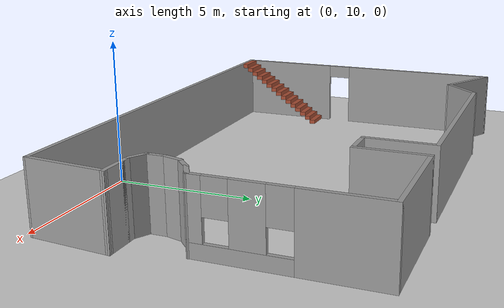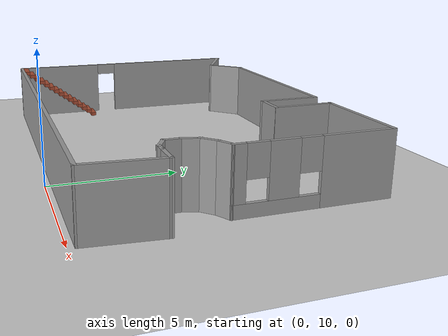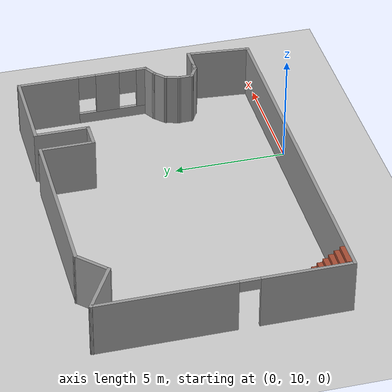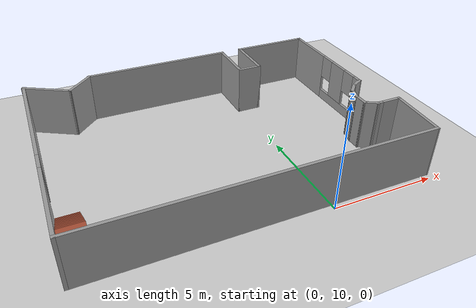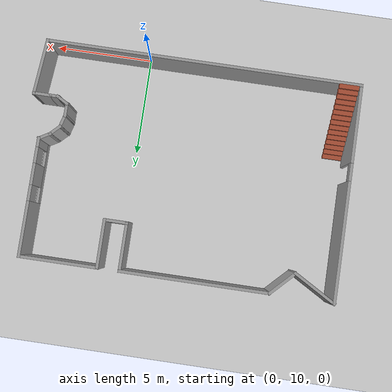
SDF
<sdf version="1.6">
 <world name="default">
  <model name="ground_plane">
   <static>1</static>
   <link name="link">
    <collision name="collision">
     <geometry><plane><normal>0 0 1</normal><size>100 100</size></plane></geometry>
     <surface><friction><ode><mu>100</mu><mu2>50</mu2></ode></friction></surface>
    </collision>
    <visual name="visual">
     <cast_shadows>0</cast_shadows>
     <geometry><plane><normal>0 0 1</normal><size>100 100</size></plane></geometry>
     <material>
      <script><uri>file://media/materials/scripts/gazebo.material</uri><name>Gazebo/Grey</name></script>
     </material>
    </visual>
   </link>
  </model>
  <model name="industria_basica">
   <pose>-2.75029 15.7364 0 0 -0 0</pose>
   <link name="Stairs_0">
    <visual name="Stairs_0_Visual_0">
     <pose>-7.4348 -1.99326 0.083333 0 -0 0</pose>
     <geometry><box><size>1 0.233333 0.166667</size></box></geometry>
     <material>
      <script><uri>file://media/materials/scripts/gazebo.material</uri><name>Gazebo/Bricks</name></script>
      <ambient>1 1 1 1</ambient>
     </material>
    </visual>
    <collision name="Stairs_0_Collision_0">
     <geometry><box><size>1 0.233333 0.166667</size></box></geometry>
     <pose>-7.4348 -1.99326 0.083333 0 -0 0</pose>
    </collision>
    <visual name="Stairs_0_Visual_1">
     <pose>-7.4348 -2.22659 0.25 0 -0 0</pose>
     <geometry><box><size>1 0.233333 0.166667</size></box></geometry>
     <material>
      <script><uri>file://media/materials/scripts/gazebo.material</uri><name>Gazebo/Bricks</name></script>
      <ambient>1 1 1 1</ambient>
     </material>
    </visual>
    <collision name="Stairs_0_Collision_1">
     <geometry><box><size>1 0.233333 0.166667</size></box></geometry>
     <pose>-7.4348 -2.22659 0.25 0 -0 0</pose>
    </collision>
    <visual name="Stairs_0_Visual_2">
     <pose>-7.4348 -2.45992 0.416667 0 -0 0</pose>
     <geometry><box><size>1 0.233333 0.166667</size></box></geometry>
     <material>
      <script><uri>file://media/materials/scripts/gazebo.material</uri><name>Gazebo/Bricks</name></script>
      <ambient>1 1 1 1</ambient>
     </material>
    </visual>
    <collision name="Stairs_0_Collision_2">
     <geometry><box><size>1 0.233333 0.166667</size></box></geometry>
     <pose>-7.4348 -2.45992 0.416667 0 -0 0</pose>
    </collision>
    <visual name="Stairs_0_Visual_3">
     <pose>-7.4348 -2.69326 0.583333 0 -0 0</pose>
     <geometry><box><size>1 0.233333 0.166667</size></box></geometry>
     <material>
      <script><uri>file://media/materials/scripts/gazebo.material</uri><name>Gazebo/Bricks</name></script>
      <ambient>1 1 1 1</ambient>
     </material>
    </visual>
    <collision name="Stairs_0_Collision_3">
     <geometry><box><size>1 0.233333 0.166667</size></box></geometry>
     <pose>-7.4348 -2.69326 0.583333 0 -0 0</pose>
    </collision>
    <visual name="Stairs_0_Visual_4">
     <pose>-7.4348 -2.92659 0.75 0 -0 0</pose>
     <geometry><box><size>1 0.233333 0.166667</size></box></geometry>
     <material>
      <script><uri>file://media/materials/scripts/gazebo.material</uri><name>Gazebo/Bricks</name></script>
      <ambient>1 1 1 1</ambient>
     </material>
    </visual>
    <collision name="Stairs_0_Collision_4">
     <geometry><box><size>1 0.233333 0.166667</size></box></geometry>
     <pose>-7.4348 -2.92659 0.75 0 -0 0</pose>
    </collision>
    <visual name="Stairs_0_Visual_5">
     <pose>-7.4348 -3.15992 0.916667 0 -0 0</pose>
     <geometry><box><size>1 0.233333 0.166667</size></box></geometry>
     <material>
      <script><uri>file://media/materials/scripts/gazebo.material</uri><name>Gazebo/Bricks</name></script>
      <ambient>1 1 1 1</ambient>
     </material>
    </visual>
    <collision name="Stairs_0_Collision_5">
     <geometry><box><size>1 0.233333 0.166667</size></box></geometry>
     <pose>-7.4348 -3.15992 0.916667 0 -0 0</pose>
    </collision>
    <visual name="Stairs_0_Visual_6">
     <pose>-7.4348 -3.39326 1.08333 0 -0 0</pose>
     <geometry><box><size>1 0.233333 0.166667</size></box></geometry>
     <material>
      <script><uri>file://media/materials/scripts/gazebo.material</uri><name>Gazebo/Bricks</name></script>
      <ambient>1 1 1 1</ambient>
     </material>
    </visual>
    <collision name="Stairs_0_Collision_6">
     <geometry><box><size>1 0.233333 0.166667</size></box></geometry>
     <pose>-7.4348 -3.39326 1.08333 0 -0 0</pose>
    </collision>
    <visual name="Stairs_0_Visual_7">
     <pose>-7.4348 -3.62659 1.25 0 -0 0</pose>
     <geometry><box><size>1 0.233333 0.166667</size></box></geometry>
     <material>
      <script><uri>file://media/materials/scripts/gazebo.material</uri><name>Gazebo/Bricks</name></script>
      <ambient>1 1 1 1</ambient>
     </material>
    </visual>
    <collision name="Stairs_0_Collision_7">
     <geometry><box><size>1 0.233333 0.166667</size></box></geometry>
     <pose>-7.4348 -3.62659 1.25 0 -0 0</pose>
    </collision>
    <visual name="Stairs_0_Visual_8">
     <pose>-7.4348 -3.85992 1.41667 0 -0 0</pose>
     <geometry><box><size>1 0.233333 0.166667</size></box></geometry>
     <material>
      <script><uri>file://media/materials/scripts/gazebo.material</uri><name>Gazebo/Bricks</name></script>
      <ambient>1 1 1 1</ambient>
     </material>
    </visual>
    <collision name="Stairs_0_Collision_8">
     <geometry><box><size>1 0.233333 0.166667</size></box></geometry>
     <pose>-7.4348 -3.85992 1.41667 0 -0 0</pose>
    </collision>
    <visual name="Stairs_0_Visual_9">
     <pose>-7.4348 -4.09326 1.58333 0 -0 0</pose>
     <geometry><box><size>1 0.233333 0.166667</size></box></geometry>
     <material>
      <script><uri>file://media/materials/scripts/gazebo.material</uri><name>Gazebo/Bricks</name></script>
      <ambient>1 1 1 1</ambient>
     </material>
    </visual>
    <collision name="Stairs_0_Collision_9">
     <geometry><box><size>1 0.233333 0.166667</size></box></geometry>
     <pose>-7.4348 -4.09326 1.58333 0 -0 0</pose>
    </collision>
    <visual name="Stairs_0_Visual_10">
     <pose>-7.4348 -4.32659 1.75 0 -0 0</pose>
     <geometry><box><size>1 0.233333 0.166667</size></box></geometry>
     <material>
      <script><uri>file://media/materials/scripts/gazebo.material</uri><name>Gazebo/Bricks</name></script>
      <ambient>1 1 1 1</ambient>
     </material>
    </visual>
    <collision name="Stairs_0_Collision_10">
     <geometry><box><size>1 0.233333 0.166667</size></box></geometry>
     <pose>-7.4348 -4.32659 1.75 0 -0 0</pose>
    </collision>
    <visual name="Stairs_0_Visual_11">
     <pose>-7.4348 -4.55992 1.91667 0 -0 0</pose>
     <geometry><box><size>1 0.233333 0.166667</size></box></geometry>
     <material>
      <script><uri>file://media/materials/scripts/gazebo.material</uri><name>Gazebo/Bricks</name></script>
      <ambient>1 1 1 1</ambient>
     </material>
    </visual>
    <collision name="Stairs_0_Collision_11">
     <geometry><box><size>1 0.233333 0.166667</size></box></geometry>
     <pose>-7.4348 -4.55992 1.91667 0 -0 0</pose>
    </collision>
    <visual name="Stairs_0_Visual_12">
     <pose>-7.4348 -4.79326 2.08333 0 -0 0</pose>
     <geometry><box><size>1 0.233333 0.166667</size></box></geometry>
     <material>
      <script><uri>file://media/materials/scripts/gazebo.material</uri><name>Gazebo/Bricks</name></script>
      <ambient>1 1 1 1</ambient>
     </material>
    </visual>
    <collision name="Stairs_0_Collision_12">
     <geometry><box><size>1 0.233333 0.166667</size></box></geometry>
     <pose>-7.4348 -4.79326 2.08333 0 -0 0</pose>
    </collision>
    <visual name="Stairs_0_Visual_13">
     <pose>-7.4348 -5.02659 2.25 0 -0 0</pose>
     <geometry><box><size>1 0.233333 0.166667</size></box></geometry>
     <material>
      <script><uri>file://media/materials/scripts/gazebo.material</uri><name>Gazebo/Bricks</name></script>
      <ambient>1 1 1 1</ambient>
     </material>
    </visual>
    <collision name="Stairs_0_Collision_13">
     <geometry><box><size>1 0.233333 0.166667</size></box></geometry>
     <pose>-7.4348 -5.02659 2.25 0 -0 0</pose>
    </collision>
    <visual name="Stairs_0_Visual_14">
     <pose>-7.4348 -5.25992 2.41667 0 -0 0</pose>
     <geometry><box><size>1 0.233333 0.166667</size></box></geometry>
     <material>
      <script><uri>file://media/materials/scripts/gazebo.material</uri><name>Gazebo/Bricks</name></script>
      <ambient>1 1 1 1</ambient>
     </material>
    </visual>
    <collision name="Stairs_0_Collision_14">
     <geometry><box><size>1 0.233333 0.166667</size></box></geometry>
     <pose>-7.4348 -5.25992 2.41667 0 -0 0</pose>
    </collision>
   </link>
   <link name="Wall_10">
    <collision name="Wall_10_Collision">
     <geometry><box><size>7.5 0.15 2.5</size></box></geometry>
     <pose>0 0 1.25 0 -0 0</pose>
    </collision>
    <visual name="Wall_10_Visual">
     <pose>0 0 1.25 0 -0 0</pose>
     <geometry><box><size>7.5 0.15 2.5</size></box></geometry>
     <material>
      <script><uri>file://media/materials/scripts/gazebo.material</uri><name>Gazebo/Grey</name></script>
      <ambient>1 1 1 1</ambient>
     </material>
    </visual>
    <pose>-1.19131 5.37072 0 0 -0 0</pose>
   </link>
   <link name="Wall_11">
    <collision name="Wall_11_Collision">
     <geometry><box><size>2.5 0.15 2.5</size></box></geometry>
     <pose>0 0 1.25 0 -0 0</pose>
    </collision>
    <visual name="Wall_11_Visual">
     <pose>0 0 1.25 0 -0 0</pose>
     <geometry><box><size>2.5 0.15 2.5</size></box></geometry>
     <material>
      <script><uri>file://media/materials/scripts/gazebo.material</uri><name>Gazebo/Grey</name></script>
      <ambient>1 1 1 1</ambient>
     </material>
    </visual>
    <pose>2.48369 4.19572 0 0 0 -1.5708</pose>
   </link>
   <link name="Wall_12">
    <collision name="Wall_12_Collision">
     <geometry><box><size>1.25 0.15 2.5</size></box></geometry>
     <pose>0 0 1.25 0 -0 0</pose>
    </collision>
    <visual name="Wall_12_Visual">
     <pose>0 0 1.25 0 -0 0</pose>
     <geometry><box><size>1.25 0.15 2.5</size></box></geometry>
     <material>
      <script><uri>file://media/materials/scripts/gazebo.material</uri><name>Gazebo/Grey</name></script>
      <ambient>1 1 1 1</ambient>
     </material>
    </visual>
    <pose>3.03369 3.02072 0 0 -0 0</pose>
   </link>
   <link name="Wall_13">
    <collision name="Wall_13_Collision">
     <geometry><box><size>2.5 0.15 2.5</size></box></geometry>
     <pose>0 0 1.25 0 -0 0</pose>
    </collision>
    <visual name="Wall_13_Visual">
     <pose>0 0 1.25 0 -0 0</pose>
     <geometry><box><size>2.5 0.15 2.5</size></box></geometry>
     <material>
      <script><uri>file://media/materials/scripts/gazebo.material</uri><name>Gazebo/Grey</name></script>
      <ambient>1 1 1 1</ambient>
     </material>
    </visual>
    <pose>3.58369 4.19572 0 0 -0 1.5708</pose>
   </link>
   <link name="Wall_14">
    <collision name="Wall_14_Collision">
     <geometry><box><size>4 0.15 2.5</size></box></geometry>
     <pose>0 0 1.25 0 -0 0</pose>
    </collision>
    <visual name="Wall_14_Visual">
     <pose>0 0 1.25 0 -0 0</pose>
     <geometry><box><size>4 0.15 2.5</size></box></geometry>
     <material>
      <script><uri>file://media/materials/scripts/gazebo.material</uri><name>Gazebo/Grey</name></script>
      <ambient>1 1 1 1</ambient>
     </material>
    </visual>
    <pose>5.50869 5.37072 0 0 -0 0</pose>
   </link>
   <link name="Wall_15">
    <pose>7.43369 2.44572 0 0 0 -1.5708</pose>
    <visual name="Wall_15_Visual_0">
     <pose>-1.60274 0 1.25 0 -0 0</pose>
     <geometry><box><size>2.79452 0.15 2.5</size></box></geometry>
     <material>
      <script><uri>file://media/materials/scripts/gazebo.material</uri><name>Gazebo/Grey</name></script>
      <ambient>1 1 1 1</ambient>
     </material>
    </visual>
    <collision name="Wall_15_Collision_0">
     <geometry><box><size>2.79452 0.15 2.5</size></box></geometry>
     <pose>-1.60274 0 1.25 0 -0 0</pose>
    </collision>
    <visual name="Wall_15_Visual_1">
     <pose>1.39726 0 0.25 0 -0 0</pose>
     <geometry><box><size>3.20548 0.15 0.5</size></box></geometry>
     <material>
      <script><uri>file://media/materials/scripts/gazebo.material</uri><name>Gazebo/Grey</name></script>
      <ambient>1 1 1 1</ambient>
     </material>
    </visual>
    <collision name="Wall_15_Collision_1">
     <geometry><box><size>3.20548 0.15 0.5</size></box></geometry>
     <pose>1.39726 0 0.25 0 -0 0</pose>
    </collision>
    <visual name="Wall_15_Visual_2">
     <pose>1.13916 0 1.5 0 -0 0</pose>
     <geometry><box><size>1.08927 0.15 2</size></box></geometry>
     <material>
      <script><uri>file://media/materials/scripts/gazebo.material</uri><name>Gazebo/Grey</name></script>
      <ambient>1 1 1 1</ambient>
     </material>
    </visual>
    <collision name="Wall_15_Collision_2">
     <geometry><box><size>1.08927 0.15 2</size></box></geometry>
     <pose>1.13916 0 1.5 0 -0 0</pose>
    </collision>
    <visual name="Wall_15_Visual_3">
     <pose>2.7419 0 1.5 0 -0 0</pose>
     <geometry><box><size>0.516207 0.15 2</size></box></geometry>
     <material>
      <script><uri>file://media/materials/scripts/gazebo.material</uri><name>Gazebo/Grey</name></script>
      <ambient>1 1 1 1</ambient>
     </material>
    </visual>
    <collision name="Wall_15_Collision_3">
     <geometry><box><size>0.516207 0.15 2</size></box></geometry>
     <pose>2.7419 0 1.5 0 -0 0</pose>
    </collision>
    <visual name="Wall_15_Visual_4">
     <pose>0.194521 0 1.9 0 -0 0</pose>
     <geometry><box><size>0.8 0.15 1.2</size></box></geometry>
     <material>
      <script><uri>file://media/materials/scripts/gazebo.material</uri><name>Gazebo/Grey</name></script>
      <ambient>1 1 1 1</ambient>
     </material>
    </visual>
    <collision name="Wall_15_Collision_4">
     <geometry><box><size>0.8 0.15 1.2</size></box></geometry>
     <pose>0.194521 0 1.9 0 -0 0</pose>
    </collision>
    <visual name="Wall_15_Visual_5">
     <pose>2.08379 0 1.9 0 -0 0</pose>
     <geometry><box><size>0.8 0.15 1.2</size></box></geometry>
     <material>
      <script><uri>file://media/materials/scripts/gazebo.material</uri><name>Gazebo/Grey</name></script>
      <ambient>1 1 1 1</ambient>
     </material>
    </visual>
    <collision name="Wall_15_Collision_5">
     <geometry><box><size>0.8 0.15 1.2</size></box></geometry>
     <pose>2.08379 0 1.9 0 -0 0</pose>
    </collision>
   </link>
   <link name="Wall_16">
    <collision name="Wall_16_Collision">
     <geometry><box><size>0.75 0.15 2.5</size></box></geometry>
     <pose>0 0 1.25 0 -0 0</pose>
    </collision>
    <visual name="Wall_16_Visual">
     <pose>0 0 1.25 0 -0 0</pose>
     <geometry><box><size>0.75 0.15 2.5</size></box></geometry>
     <material>
      <script><uri>file://media/materials/scripts/gazebo.material</uri><name>Gazebo/Grey</name></script>
      <ambient>1 1 1 1</ambient>
     </material>
    </visual>
    <pose>7.17388 -0.629277 0 0 0 -2.61799</pose>
   </link>
   <link name="Wall_17">
    <collision name="Wall_17_Collision">
     <geometry><box><size>0.75 0.15 2.5</size></box></geometry>
     <pose>0 0 1.25 0 -0 0</pose>
    </collision>
    <visual name="Wall_17_Visual">
     <pose>0 0 1.25 0 -0 0</pose>
     <geometry><box><size>0.75 0.15 2.5</size></box></geometry>
     <material>
      <script><uri>file://media/materials/scripts/gazebo.material</uri><name>Gazebo/Grey</name></script>
      <ambient>1 1 1 1</ambient>
     </material>
    </visual>
    <pose>6.70194 -0.991409 0 0 0 -2.35619</pose>
   </link>
   <link name="Wall_18">
    <collision name="Wall_18_Collision">
     <geometry><box><size>0.75 0.15 2.5</size></box></geometry>
     <pose>0 0 1.25 0 -0 0</pose>
    </collision>
    <visual name="Wall_18_Visual">
     <pose>0 0 1.25 0 -0 0</pose>
     <geometry><box><size>0.75 0.15 2.5</size></box></geometry>
     <material>
      <script><uri>file://media/materials/scripts/gazebo.material</uri><name>Gazebo/Grey</name></script>
      <ambient>1 1 1 1</ambient>
     </material>
    </visual>
    <pose>6.41217 -1.49332 0 0 0 -1.8326</pose>
   </link>
   <link name="Wall_19">
    <collision name="Wall_19_Collision">
     <geometry><box><size>0.75 0.15 2.5</size></box></geometry>
     <pose>0 0 1.25 0 -0 0</pose>
    </collision>
    <visual name="Wall_19_Visual">
     <pose>0 0 1.25 0 -0 0</pose>
     <geometry><box><size>0.75 0.15 2.5</size></box></geometry>
     <material>
      <script><uri>file://media/materials/scripts/gazebo.material</uri><name>Gazebo/Grey</name></script>
      <ambient>1 1 1 1</ambient>
     </material>
    </visual>
    <pose>6.33452 -2.0831 0 0 0 -1.5708</pose>
   </link>
   <link name="Wall_20">
    <collision name="Wall_20_Collision">
     <geometry><box><size>0.75 0.15 2.5</size></box></geometry>
     <pose>0 0 1.25 0 -0 0</pose>
    </collision>
    <visual name="Wall_20_Visual">
     <pose>0 0 1.25 0 -0 0</pose>
     <geometry><box><size>0.75 0.15 2.5</size></box></geometry>
     <material>
      <script><uri>file://media/materials/scripts/gazebo.material</uri><name>Gazebo/Grey</name></script>
      <ambient>1 1 1 1</ambient>
     </material>
    </visual>
    <pose>6.59433 -2.5331 0 0 0 -0.523599</pose>
   </link>
   <link name="Wall_21">
    <collision name="Wall_21_Collision">
     <geometry><box><size>0.5 0.15 2.5</size></box></geometry>
     <pose>0 0 1.25 0 -0 0</pose>
    </collision>
    <visual name="Wall_21_Visual">
     <pose>0 0 1.25 0 -0 0</pose>
     <geometry><box><size>0.5 0.15 2.5</size></box></geometry>
     <material>
      <script><uri>file://media/materials/scripts/gazebo.material</uri><name>Gazebo/Grey</name></script>
      <ambient>1 1 1 1</ambient>
     </material>
    </visual>
    <pose>7.02914 -2.6831 0 0 -0 0</pose>
   </link>
   <link name="Wall_22">
    <collision name="Wall_22_Collision">
     <geometry><box><size>1 0.15 2.5</size></box></geometry>
     <pose>0 0 1.25 0 -0 0</pose>
    </collision>
    <visual name="Wall_22_Visual">
     <pose>0 0 1.25 0 -0 0</pose>
     <geometry><box><size>1 0.15 2.5</size></box></geometry>
     <material>
      <script><uri>file://media/materials/scripts/gazebo.material</uri><name>Gazebo/Grey</name></script>
      <ambient>1 1 1 1</ambient>
     </material>
    </visual>
    <pose>7.62913 -2.6831 0 0 -0 0</pose>
   </link>
   <link name="Wall_23">
    <collision name="Wall_23_Collision">
     <geometry><box><size>2.91273 0.15 2.5</size></box></geometry>
     <pose>0 0 1.25 0 -0 0</pose>
    </collision>
    <visual name="Wall_23_Visual">
     <pose>0 0 1.25 0 -0 0</pose>
     <geometry><box><size>2.91273 0.15 2.5</size></box></geometry>
     <material>
      <script><uri>file://media/materials/scripts/gazebo.material</uri><name>Gazebo/Grey</name></script>
      <ambient>1 1 1 1</ambient>
     </material>
    </visual>
    <pose>7.93565 -4.05937 0 0 0 -1.65668</pose>
   </link>
   <link name="Wall_4">
    <pose>-8.03284 -0.010648 0 0 0 -1.5708</pose>
    <visual name="Wall_4_Visual_0">
     <pose>-2.45105 0 1.25 0 -0 0</pose>
     <geometry><box><size>6.09789 0.15 2.5</size></box></geometry>
     <material>
      <script><uri>file://media/materials/scripts/gazebo.material</uri><name>Gazebo/Grey</name></script>
      <ambient>1 1 1 1</ambient>
     </material>
    </visual>
    <collision name="Wall_4_Collision_0">
     <geometry><box><size>6.09789 0.15 2.5</size></box></geometry>
     <pose>-2.45105 0 1.25 0 -0 0</pose>
    </collision>
    <visual name="Wall_4_Visual_1">
     <pose>3.49895 0 1.25 0 -0 0</pose>
     <geometry><box><size>4.00211 0.15 2.5</size></box></geometry>
     <material>
      <script><uri>file://media/materials/scripts/gazebo.material</uri><name>Gazebo/Grey</name></script>
      <ambient>1 1 1 1</ambient>
     </material>
    </visual>
    <collision name="Wall_4_Collision_1">
     <geometry><box><size>4.00211 0.15 2.5</size></box></geometry>
     <pose>3.49895 0 1.25 0 -0 0</pose>
    </collision>
    <visual name="Wall_4_Visual_2">
     <pose>1.04789 0 2.25 0 -0 0</pose>
     <geometry><box><size>0.9 0.15 0.5</size></box></geometry>
     <material>
      <script><uri>file://media/materials/scripts/gazebo.material</uri><name>Gazebo/Grey</name></script>
      <ambient>1 1 1 1</ambient>
     </material>
    </visual>
    <collision name="Wall_4_Collision_2">
     <geometry><box><size>0.9 0.15 0.5</size></box></geometry>
     <pose>1.04789 0 2.25 0 -0 0</pose>
    </collision>
   </link>
   <link name="Wall_5">
    <collision name="Wall_5_Collision">
     <geometry><box><size>16 0.15 2.5</size></box></geometry>
     <pose>0 0 1.25 0 -0 0</pose>
    </collision>
    <visual name="Wall_5_Visual">
     <pose>0 0 1.25 0 -0 0</pose>
     <geometry><box><size>16 0.15 2.5</size></box></geometry>
     <material>
      <script><uri>file://media/materials/scripts/gazebo.material</uri><name>Gazebo/Grey</name></script>
      <ambient>1 1 1 1</ambient>
     </material>
    </visual>
    <pose>-0.10784 -5.43565 0 0 -0 0</pose>
   </link>
   <link name="Wall_8">
    <collision name="Wall_8_Collision">
     <geometry><box><size>2.5 0.15 2.5</size></box></geometry>
     <pose>0 0 1.25 0 -0 0</pose>
    </collision>
    <visual name="Wall_8_Visual">
     <pose>0 0 1.25 0 -0 0</pose>
     <geometry><box><size>2.5 0.15 2.5</size></box></geometry>
     <material>
      <script><uri>file://media/materials/scripts/gazebo.material</uri><name>Gazebo/Grey</name></script>
      <ambient>1 1 1 1</ambient>
     </material>
    </visual>
    <pose>-7.01526 4.82685 0 0 0 -0.523599</pose>
   </link>
   <link name="Wall_9">
    <collision name="Wall_9_Collision">
     <geometry><box><size>1.75 0.15 2.5</size></box></geometry>
     <pose>0 0 1.25 0 -0 0</pose>
    </collision>
    <visual name="Wall_9_Visual">
     <pose>0 0 1.25 0 -0 0</pose>
     <geometry><box><size>1.75 0.15 2.5</size></box></geometry>
     <material>
      <script><uri>file://media/materials/scripts/gazebo.material</uri><name>Gazebo/Grey</name></script>
      <ambient>1 1 1 1</ambient>
     </material>
    </visual>
    <pose>-5.43199 4.80504 0 0 -0 0.785398</pose>
   </link>
   <static>1</static>
  </model>
 </world>
</sdf>
